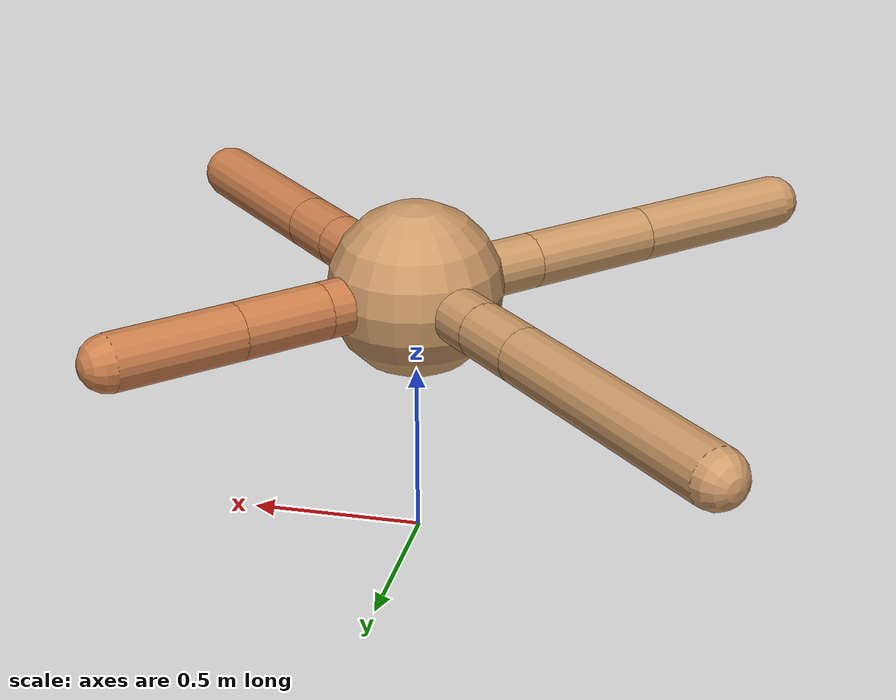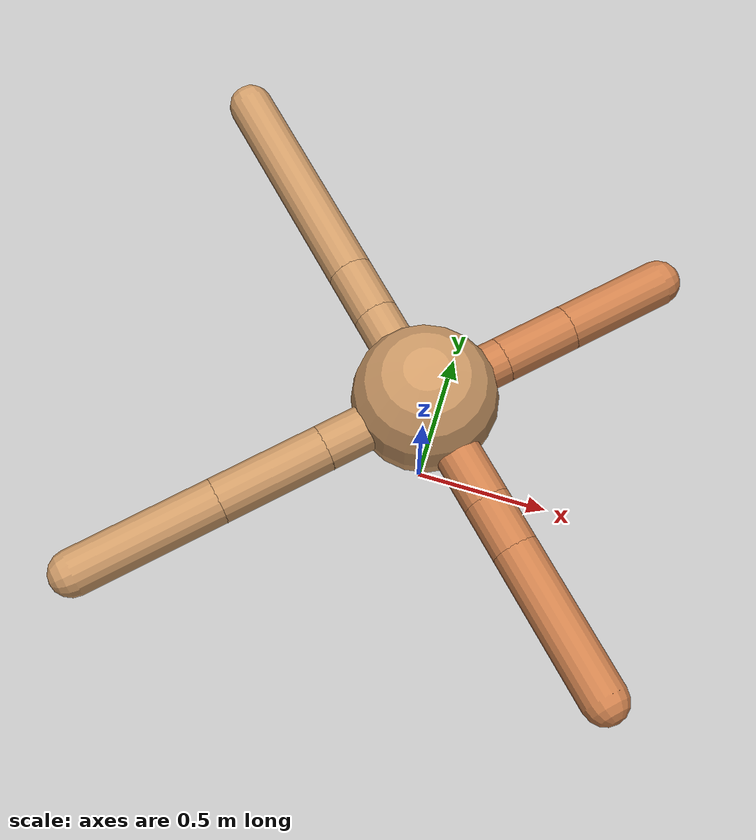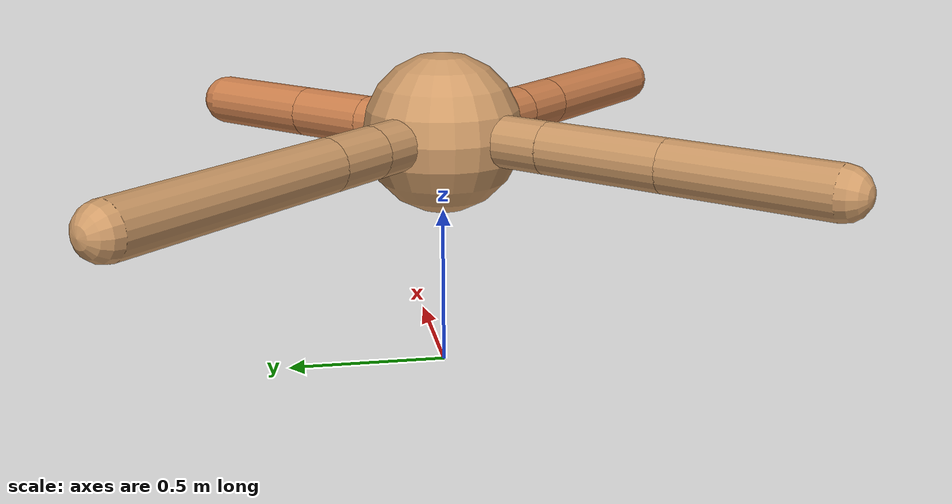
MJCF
<mujoco model="ant">
  <compiler angle="degree" coordinate="local" inertiafromgeom="true" />
  <option integrator="RK4" timestep="0.01" />
  <custom>
    <numeric data="0.0 0.0 0.55 1.0 0.0 0.0 0.0 0.0 1.0 0.0 -1.0 0.0 -1.0 0.0 1.0" name="init_qpos" />
  </custom>
  <default>
    <joint armature="1" damping="1" limited="true" />
    <geom conaffinity="0" condim="3" density="5.0" friction="1.5 0.1 0.1" margin="0.01" rgba="0.8 0.6 0.4 1" />
  </default>
  <worldbody>
    <body name="torso" pos="0 0 0.75">
      <geom name="torso_geom" pos="0 0 0" size="0.25" type="sphere" />

      <body name="front_left_leg" pos="0 0 0">
        <geom fromto="0.0 0.0 0.0 0.2101587565050861 0.2101587565050861 0.0" name="aux_1_geom" size="0.08" type="capsule" rgba=".8 .5 .3 1" />
        <body name="aux_1" pos="0.2101587565050861 0.2101587565050861 0.0">
          <joint axis="0 0 1" name="hip_1" pos="0.0 0.0 0.0" range="-40 40" type="hinge" />
          <geom fromto="0.0 0.0 0.0 0.1823187645310554 0.1823187645310554 0.0" name="left_leg_geom" size="0.08" type="capsule" rgba=".8 .5 .3 1" />
          <body pos="0.1823187645310554 0.1823187645310554 0.0" name="front_left_foot">
            <joint axis="-1 1 0" name="ankle_1" pos="0.0 0.0 0.0" range="30 100" type="hinge" />
            <geom fromto="0.0 0.0 0.0 0.26080453754751204 0.26080453754751204 0.0" name="left_ankle_geom" size="0.08" type="capsule" rgba=".8 .5 .3 1" />
          </body>
        </body>
      </body>
      <body name="front_right_leg" pos="0 0 0">
        <geom fromto="0.0 0.0 0.0 -0.246890474397431 0.246890474397431 0.0" name="aux_2_geom" size="0.08" type="capsule" />
        <body name="aux_2" pos="-0.246890474397431 0.246890474397431 0.0">
          <joint axis="0 0 1" name="hip_2" pos="0.0 0.0 0.0" range="-40 40" type="hinge" />
          <geom fromto="0.0 0.0 0.0 -0.13404180224688647 0.13404180224688647 0.0" name="right_leg_geom" size="0.08" type="capsule" />
          <body pos="-0.13404180224688647 0.13404180224688647 0.0" name="front_right_foot">
            <joint axis="1 1 0" name="ankle_2" pos="0.0 0.0 0.0" range="-100 -30" type="hinge" />
            <geom fromto="0.0 0.0 0.0 -0.5587594987832912 0.5587594987832912 0.0" name="right_ankle_geom" size="0.08" type="capsule" />
          </body>
        </body>
      </body>
      <body name="left_back_leg" pos="0 0 0">
        <geom fromto="0.0 0.0 0.0 -0.2705623293905527 -0.2705623293905527 0.0" name="aux_3_geom" size="0.08" type="capsule" />
        <body name="aux_3" pos="-0.2705623293905527 -0.2705623293905527 0.0">
          <joint axis="0 0 1" name="hip_3" pos="0.0 0.0 0.0" range="-40 40" type="hinge" />
          <geom fromto="0.0 0.0 0.0 -0.2752911837757445 -0.2752911837757445 0.0" name="back_leg_geom" size="0.08" type="capsule" />
          <body pos="-0.2752911837757445 -0.2752911837757445 0.0" name="left_back_foot">
            <joint axis="-1 1 0" name="ankle_3" pos="0.0 0.0 0.0" range="-100 -30" type="hinge" />
            <geom fromto="0.0 0.0 0.0 -0.36274503295877714 -0.36274503295877714 0.0" name="third_ankle_geom" size="0.08" type="capsule" />
          </body>
        </body>
      </body>
      <body name="right_back_leg" pos="0 0 0">
        <geom fromto="0.0 0.0 0.0 0.2948743944653351 -0.2948743944653351 0.0" name="aux_4_geom" size="0.08" type="capsule" rgba=".8 .5 .3 1" />
        <body name="aux_4" pos="0.2948743944653351 -0.2948743944653351 0.0">
          <joint axis="0 0 1" name="hip_4" pos="0.0 0.0 0.0" range="-40 40" type="hinge" />
          <geom fromto="0.0 0.0 0.0 0.1297405048541992 -0.1297405048541992 0.0" name="rightback_leg_geom" size="0.08" type="capsule" rgba=".8 .5 .3 1" />
          <body pos="0.1297405048541992 -0.1297405048541992 0.0" name="right_back_foot">
            <joint axis="1 1 0" name="ankle_4" pos="0.0 0.0 0.0" range="30 100" type="hinge" />
            <geom fromto="0.0 0.0 0.0 0.38590758870817765 -0.38590758870817765 0.0" name="fourth_ankle_geom" size="0.08" type="capsule" rgba=".8 .5 .3 1" />
          </body>
        </body>
      </body>
    </body>
  </worldbody>
  <actuator>
    <motor ctrllimited="true" ctrlrange="-1.0 1.0" joint="hip_4" gear="150" />
    <motor ctrllimited="true" ctrlrange="-1.0 1.0" joint="ankle_4" gear="150" />
    <motor ctrllimited="true" ctrlrange="-1.0 1.0" joint="hip_1" gear="150" />
    <motor ctrllimited="true" ctrlrange="-1.0 1.0" joint="ankle_1" gear="150" />
    <motor ctrllimited="true" ctrlrange="-1.0 1.0" joint="hip_2" gear="150" />
    <motor ctrllimited="true" ctrlrange="-1.0 1.0" joint="ankle_2" gear="150" />
    <motor ctrllimited="true" ctrlrange="-1.0 1.0" joint="hip_3" gear="150" />
    <motor ctrllimited="true" ctrlrange="-1.0 1.0" joint="ankle_3" gear="150" />
  </actuator>
</mujoco>
